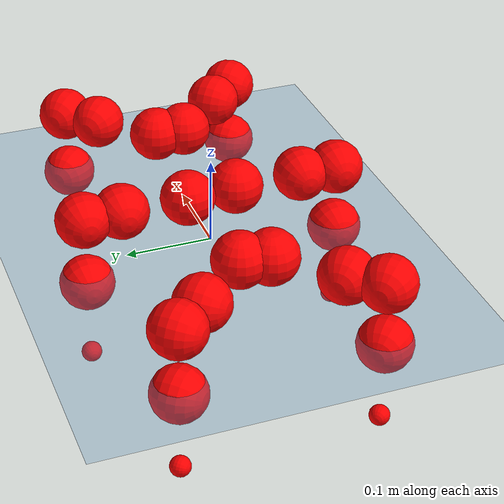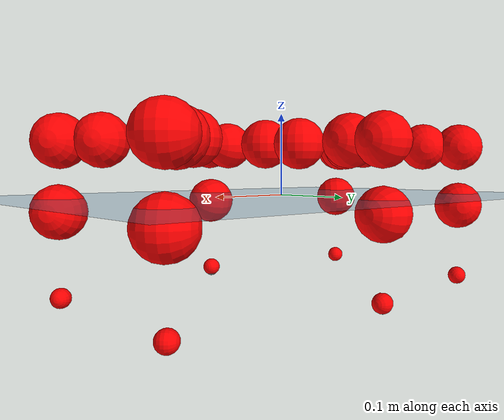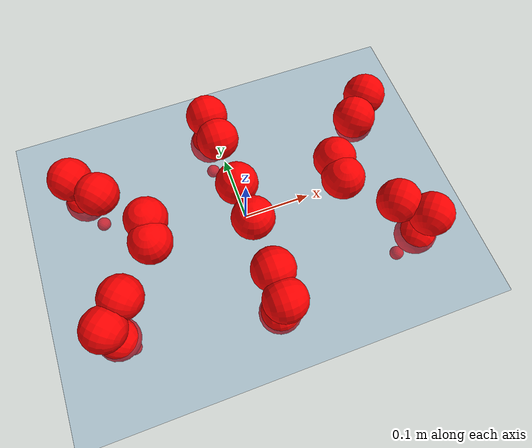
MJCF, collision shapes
<mujoco model="Golem">
  <compiler angle="radian" assetdir="assets" balanceinertia="true" inertiafromgeom="false"/>

  <option timestep="0.005" density="1.2" viscosity="2e-05"/>

  <size nkey="1"/>

  <visual>
    <quality shadowsize="8192"/>
    <map shadowclip="0.5"/>
  </visual>

  <default>
    <default class="/">
      <joint armature="0.01" damping="0.01" frictionloss="0.01"/>
      <geom contype="0" conaffinity="0" group="1" solref="-1000 -80"/>
      <site size="0.01 0.005 0.005" group="5"/>
      <general forcelimited="true" biastype="affine" gainprm="25" biasprm="0 -25 -0.5"/>
      <default class="visual">
        <geom type="mesh" group="2"/>
      </default>
      <default class="collision">
        <geom group="3"/>
      </default>
      <default class="foot">
        <geom size="0.01 0 0" condim="6" group="4" priority="1" solimp="0.015 1 0.01"/>
      </default>
      <default class="reward_collision_sphere">
        <geom group="5" rgba="1 0 0 1"/>
      </default>
    </default>
  </default>

  <asset>
    <texture type="skybox" colorspace="auto" name="//unnamed_texture_0" builtin="gradient" rgb1="0.95 0.95 0.95" rgb2="0.95 0.95 0.95" width="100" height="600"/>
    <texture type="2d" colorspace="auto" name="texplane" builtin="checker" rgb1="0.345 0.575 0.748" rgb2="0.345 0.575 0.748" markrgb="1 1 1" width="512" height="512"/>
    <material name="MatPlane" class="/" texture="texplane" texuniform="true" texrepeat="2 2" specular="0.9"/>
    <mesh name="body" class="/" file="body.stl" scale="0.001 0.001 0.001"/>
    <mesh name="coxa" class="/" file="coxa.stl" scale="0.001 0.001 0.001"/>
    <mesh name="femur" class="/" file="femur.stl" scale="0.001 0.001 0.001"/>
    <mesh name="tibia" class="/" file="tibia.stl" scale="0.001 0.001 0.001"/>
    <mesh name="tarsus" class="/" file="tarsus.stl" scale="0.001 0.001 0.001"/>
  </asset>

  <worldbody>
    <geom name="floor" class="/" size="100 100 0.125" type="plane" group="0" material="MatPlane"/>
    <light name="toplight_shadow" class="/" pos="0 0 5" dir="0.0990148 0.0990148 -0.990148" type="directional" ambient="0.04 0.04 0.04" diffuse="0.55 0.55 0.55" specular="0.12 0.12 0.12"/>
    <light name="toplight_fill" class="/" pos="0 0 5" dir="0.0990148 0.0990148 -0.990148" type="directional" castshadow="false" ambient="0.04 0.04 0.04" diffuse="0.3 0.3 0.3" specular="0.08 0.08 0.08"/>
    <body name="trunk" pos="0.000139037 -0.000179225 -0.000861537" quat="0.999999 -0.000539329 0.000602334 0.000893394">
      <inertial pos="-0.000771134 -0.000508398 -0.00337234" quat="1 0.000148863 -0.000213872 0.000451905" mass="1.78837" diaginertia="0.00592112 0.000129564 0.0103415"/>
      <joint name="//unnamed_joint_0" type="free"/>
      <geom name="//unnamed_geom_1" class="/" pos="0 0 0.0645236" quat="1 0 0 0" type="mesh" rgba="0.9 0.9 0.9 1" mesh="body"/>
      <site name="imu" class="/" pos="0.128502 -0.000567713 0.0991862" size="0.00776413"/>
      <camera name="track" class="/" pos="0 -0.839559 0" quat="0.707107 0.707107 0 0" mode="trackcom"/>
      <camera name="ego_camera" class="/" pos="0.117166 0 0.100818" quat="-0.5 -0.5 0.5 0.5"/>
      <body name="coxa_RR" pos="-0.161617 -0.0342719 0.0639957" quat="0.383045 -0.000384991 -0.00110297 -0.923729">
        <inertial pos="0.000139139 5.54426e-05 0.00193354" quat="0.999996 0.00276231 -0.000227783 -0.000259417" mass="0.0961059" diaginertia="0.00604059 0.000132484 0.0105798"/>
        <joint name="coxa_joint_RR" class="/" pos="0 0 0" axis="0.000669162 0.00604112 -0.999982" range="-3.16546 3.09612" armature="0.00771061" damping="0.00153464" frictionloss="0.0078368"/>
        <geom name="//unnamed_geom_2" class="/" type="mesh" rgba="0.2 0.2 0.2 1" mesh="coxa"/>
        <geom name="//unnamed_geom_3" class="reward_collision_sphere" size="0.0310565" pos="-0.0270383 0 0"/>
        <body name="femur_RR" pos="0.0552283 0.00222913 -0.00075988" quat="0.499953 -0.49974 0.500233 0.500074">
          <inertial pos="-0.00039922 -0.000258237 0.00089327" quat="0.999996 0.00217795 0.00151773 0.000621347" mass="0.0942161" diaginertia="0.00591537 0.000130134 0.010558"/>
          <joint name="femur_joint_RR" class="/" pos="0 0 0" axis="0.000229231 -0.000600599 -1" range="-3.09818 3.14361" armature="0.00704452" damping="0" frictionloss="0.00816264"/>
          <geom name="//unnamed_geom_4" class="/" type="mesh" rgba="0.9 0.9 0.9 1" mesh="femur"/>
          <geom name="//unnamed_geom_5" class="reward_collision_sphere" size="0.0310565"/>
          <body name="tibia_RR" pos="-0.00166633 -0.0439163 0.0020491" quat="4.52446e-05 1 -4.89087e-05 0.000426627">
            <inertial pos="0.00146176 0.000613406 0.000428284" quat="0.999996 0.0013834 -0.00094029 0.00207658" mass="0.0952588" diaginertia="0.00601578 0.000130094 0.0101836"/>
            <joint name="tibia_joint_RR" class="/" pos="0 0 0" axis="-0.00914859 0.00406197 0.99995" range="-3.09587 3.14484" armature="0.00721754" damping="0" frictionloss="0.00783495"/>
            <geom name="//unnamed_geom_6" class="/" type="mesh" rgba="0.2 0.2 0.2 1" mesh="tibia"/>
            <geom name="//unnamed_geom_7" class="reward_collision_sphere" size="0.0310565"/>
            <body name="tarsus_RR" pos="0.0770176 0.000784819 -0.00164391" quat="1 -0.000161594 0.000223972 0.000292346">
              <inertial pos="0.0547145 0.000825638 -0.000741927" quat="0.500127 0.499661 0.499952 0.50026" mass="0.0934715" diaginertia="0.0059149 0.000129998 0.0104454"/>
              <joint name="tarsus_joint_RR" class="/" pos="0 0 0" axis="-2.71883e-05 -0.00565642 0.999984" range="-3.12819 3.14011" armature="0.00820594" damping="0" frictionloss="0.00759276"/>
              <geom name="//unnamed_geom_8" class="/" type="mesh" rgba="0.9 0.9 0.9 1" mesh="tarsus"/>
              <geom name="foot_1" class="foot" size="0.00736248" pos="0.100943 0 0" quat="0 -0.707107 0 0.707107"/>
              <geom name="//unnamed_geom_10" class="reward_collision_sphere" size="0.0310565"/>
              <geom name="//unnamed_geom_11" class="reward_collision_sphere" size="0.0116462" pos="0.0968873 0 0"/>
              <site name="foot_1" class="foot" pos="0.100943 0 0" quat="0 -0.707107 0 0.707107" size="0.00776413"/>
            </body>
          </body>
        </body>
      </body>
      <body name="coxa_RM" pos="-0.000171992 -0.0563463 0.0650002" quat="0.706661 -0.000732493 0.000292874 -0.707552">
        <inertial pos="2.67101e-05 -0.00177212 0.000527465" quat="0.999996 0.00118233 0.000343404 0.00236626" mass="0.0925892" diaginertia="0.00585441 0.000131266 0.0105407"/>
        <joint name="coxa_joint_RM" class="/" pos="0 0 0" axis="-0.00464243 -0.00983102 -0.999941" range="-3.14115 3.16935" armature="0.00866213" damping="0.000271369" frictionloss="0.00740695"/>
        <geom name="//unnamed_geom_12" class="/" type="mesh" rgba="0.2 0.2 0.2 1" mesh="coxa"/>
        <geom name="//unnamed_geom_13" class="reward_collision_sphere" size="0.0310565" pos="-0.0270383 0 0"/>
        <body name="femur_RM" pos="0.0509256 9.86118e-06 0.000268115" quat="0.499942 -0.499923 0.500272 0.499862">
          <inertial pos="0.000431303 -0.0010308 0.000161034" quat="0.999991 0.00222836 0.000976075 -0.003482" mass="0.0941293" diaginertia="0.00585903 0.000133375 0.0106525"/>
          <joint name="femur_joint_RM" class="/" pos="0 0 0" axis="-0.000287857 0.00397587 -0.999992" range="-3.13208 3.13346" armature="0.00750876" damping="0.00374247" frictionloss="0.00803127"/>
          <geom name="//unnamed_geom_14" class="/" type="mesh" rgba="0.9 0.9 0.9 1" mesh="femur"/>
          <geom name="//unnamed_geom_15" class="reward_collision_sphere" size="0.0310565"/>
          <body name="tibia_RM" pos="-0.00045198 -0.0434901 2.05707e-05" quat="-1.56537e-05 1 -6.08526e-05 0.000144843">
            <inertial pos="-0.000750047 -0.00144083 -0.00186172" quat="0.999964 0.00198816 0.00481395 0.00677109" mass="0.0931075" diaginertia="0.00610316 0.000131317 0.010635"/>
            <joint name="tibia_joint_RM" class="/" pos="0 0 0" axis="0.00116866 0.000540368 0.999999" range="-3.14867 3.15261" armature="0.00848985" damping="0.000578184" frictionloss="0.00867439"/>
            <geom name="//unnamed_geom_16" class="/" type="mesh" rgba="0.2 0.2 0.2 1" mesh="tibia"/>
            <geom name="//unnamed_geom_17" class="reward_collision_sphere" size="0.0310565"/>
            <body name="tarsus_RM" pos="0.0776757 0.00051158 0.00209293" quat="1 -8.44075e-05 -0.000113421 6.75589e-05">
              <inertial pos="0.0548467 0.00146603 0.00015745" quat="0.500443 0.502803 0.498363 0.498377" mass="0.092848" diaginertia="0.00590915 0.000129013 0.0103316"/>
              <joint name="tarsus_joint_RM" class="/" pos="0 0 0" axis="0.000854413 8.89965e-05 1" range="-3.09547 3.13023" armature="0.00872239" damping="0" frictionloss="0.00794677"/>
              <geom name="//unnamed_geom_18" class="/" type="mesh" rgba="0.9 0.9 0.9 1" mesh="tarsus"/>
              <geom name="foot_2" class="foot" size="0.00841748" pos="0.100943 0 0" quat="0 -0.707107 0 0.707107"/>
              <geom name="//unnamed_geom_20" class="reward_collision_sphere" size="0.0310565"/>
              <geom name="//unnamed_geom_21" class="reward_collision_sphere" size="0.0116462" pos="0.0968873 0 0"/>
              <site name="foot_2" class="foot" pos="0.100943 0 0" quat="0 -0.707107 0 0.707107" size="0.00776413"/>
            </body>
          </body>
        </body>
      </body>
      <body name="coxa_RF" pos="0.159959 -0.0352462 0.0666177" quat="0.924116 0.000266312 -0.000198183 -0.382112">
        <inertial pos="-0.00077755 -0.00264818 0.000853857" quat="0.999989 -0.00230163 0.00300814 -0.00262224" mass="0.0947832" diaginertia="0.00601003 0.000129343 0.0104162"/>
        <joint name="coxa_joint_RF" class="/" pos="0 0 0" axis="-0.00237055 0.00274039 -0.999993" range="-3.12393 3.18014" armature="0.00765207" damping="0" frictionloss="0.00770119"/>
        <geom name="//unnamed_geom_22" class="/" type="mesh" rgba="0.2 0.2 0.2 1" mesh="coxa"/>
        <geom name="//unnamed_geom_23" class="reward_collision_sphere" size="0.0310565" pos="-0.0270383 0 0"/>
        <body name="femur_RF" pos="0.0563036 0.000575264 -0.00163357" quat="0.500309 -0.500426 0.499167 0.500097">
          <inertial pos="0.000584624 -0.0013747 0.00214071" quat="0.99994 -0.00346637 0.00860228 0.00583072" mass="0.0950421" diaginertia="0.00594261 0.000127268 0.0105497"/>
          <joint name="femur_joint_RF" class="/" pos="0 0 0" axis="0.00393289 -0.00208444 -0.99999" range="-3.12346 3.13804" armature="0.00770198" damping="0" frictionloss="0.00697927"/>
          <geom name="//unnamed_geom_24" class="/" type="mesh" rgba="0.9 0.9 0.9 1" mesh="femur"/>
          <geom name="//unnamed_geom_25" class="reward_collision_sphere" size="0.0310565"/>
          <body name="tibia_RF" pos="0.00088385 -0.047232 0.000318739" quat="4.28983e-05 1 0.000377532 0.000482394">
            <inertial pos="-0.000133978 0.000319879 0.0009026" quat="0.999994 -0.00178149 0.00180296 -0.00233213" mass="0.0938262" diaginertia="0.00596558 0.000132132 0.010633"/>
            <joint name="tibia_joint_RF" class="/" pos="0 0 0" axis="0.00618769 -0.00442162 0.999971" range="-3.12346 3.1436" armature="0.0081088" damping="0.00625449" frictionloss="0.00777728"/>
            <geom name="//unnamed_geom_26" class="/" type="mesh" rgba="0.2 0.2 0.2 1" mesh="tibia"/>
            <geom name="//unnamed_geom_27" class="reward_collision_sphere" size="0.0310565"/>
            <body name="tarsus_RF" pos="0.0789341 0.00221208 -0.000283339" quat="0.999999 -0.00070157 -0.00078508 -2.97075e-05">
              <inertial pos="0.0518837 -0.000427645 0.00237054" quat="0.502768 0.499075 0.502133 0.495994" mass="0.0911131" diaginertia="0.00593635 0.000127031 0.0102042"/>
              <joint name="tarsus_joint_RF" class="/" pos="0 0 0" axis="-0.0111929 0.00737029 0.99991" range="-3.09534 3.11904" armature="0.00771904" damping="0" frictionloss="0.00802514"/>
              <geom name="//unnamed_geom_28" class="/" type="mesh" rgba="0.9 0.9 0.9 1" mesh="tarsus"/>
              <geom name="foot_3" class="foot" size="0.00762139" pos="0.100943 0 0" quat="0 -0.707107 0 0.707107"/>
              <geom name="//unnamed_geom_30" class="reward_collision_sphere" size="0.0310565"/>
              <geom name="//unnamed_geom_31" class="reward_collision_sphere" size="0.0116462" pos="0.0968873 0 0"/>
              <site name="foot_3" class="foot" pos="0.100943 0 0" quat="0 -0.707107 0 0.707107" size="0.00776413"/>
            </body>
          </body>
        </body>
      </body>
      <body name="coxa_LR" pos="-0.15844 0.0376252 0.0660732" quat="0.381786 -0.00040353 8.76654e-05 0.924251">
        <inertial pos="0.00231773 0.000125678 0.000742395" quat="0.99998 -0.0060217 0.00166466 -5.09717e-05" mass="0.0922303" diaginertia="0.00591039 0.000128809 0.0102916"/>
        <joint name="coxa_joint_LR" class="/" pos="0 0 0" axis="0.00738208 0.00511254 -0.99996" range="-3.12538 3.14836" armature="0.00807349" damping="0.0091285" frictionloss="0.00784373"/>
        <geom name="//unnamed_geom_32" class="/" type="mesh" rgba="0.2 0.2 0.2 1" mesh="coxa"/>
        <geom name="//unnamed_geom_33" class="reward_collision_sphere" size="0.0310565" pos="-0.0270383 0 0"/>
        <body name="femur_LR" pos="0.0544116 -0.00418245 -0.00229341" quat="0.500271 -0.500123 0.500556 0.499048">
          <inertial pos="-0.00127239 -0.000245197 0.000752888" quat="1 0.000497128 0.000395775 -0.000596423" mass="0.0932217" diaginertia="0.00591519 0.000129216 0.010285"/>
          <joint name="femur_joint_LR" class="/" pos="0 0 0" axis="-0.00108523 -0.00013553 0.999999" range="-3.1475 3.18745" armature="0.00759887" damping="0.00325836" frictionloss="0.0086773"/>
          <geom name="//unnamed_geom_34" class="/" type="mesh" rgba="0.9 0.9 0.9 1" mesh="femur"/>
          <geom name="//unnamed_geom_35" class="reward_collision_sphere" size="0.0310565"/>
          <body name="tibia_LR" pos="0.0007184 -0.0477568 -0.00319387" quat="-3.66683e-05 1 -4.01273e-05 -3.03148e-05">
            <inertial pos="-0.000997592 -0.000764108 0.000918996" quat="0.999989 0.00218066 0.00376099 -0.00201811" mass="0.0943727" diaginertia="0.00598821 0.000132561 0.0104707"/>
            <joint name="tibia_joint_LR" class="/" pos="0 0 0" axis="-0.000750515 -0.00022429 -1" range="-3.15914 3.10171" armature="0.00693071" damping="0" frictionloss="0.00785235"/>
            <geom name="//unnamed_geom_36" class="/" type="mesh" rgba="0.2 0.2 0.2 1" mesh="tibia"/>
            <geom name="//unnamed_geom_37" class="reward_collision_sphere" size="0.0310565"/>
            <body name="tarsus_LR" pos="0.079667 0.000577141 -0.000275195" quat="1 -0.000447174 0.000335138 5.15755e-05">
              <inertial pos="0.0555538 0.000597626 0.000617571" quat="0.499276 0.50035 0.501084 0.499288" mass="0.0927314" diaginertia="0.00590297 0.000130681 0.0103295"/>
              <joint name="tarsus_joint_LR" class="/" pos="0 0 0" axis="0.00166976 0.000402934 -0.999999" range="-3.09706 3.13446" armature="0.00780226" damping="0" frictionloss="0.00774647"/>
              <geom name="//unnamed_geom_38" class="/" type="mesh" rgba="0.9 0.9 0.9 1" mesh="tarsus"/>
              <geom name="foot_4" class="foot" size="0.00722762" pos="0.100943 0 0" quat="0.707107 0 -0.707107 0"/>
              <geom name="//unnamed_geom_40" class="reward_collision_sphere" size="0.0310565"/>
              <geom name="//unnamed_geom_41" class="reward_collision_sphere" size="0.0116462" pos="0.0968873 0 0"/>
              <site name="foot_4" class="foot" pos="0.100943 0 0" quat="0.707107 0 -0.707107 0" size="0.00776413"/>
            </body>
          </body>
        </body>
      </body>
      <body name="coxa_LM" pos="-0.00369837 0.055538 0.0637693" quat="0.706694 -0.000495235 0.00121094 0.707518">
        <inertial pos="0.00111152 0.00010815 0.00123505" quat="0.999999 -0.00139608 0.000310886 -0.000906305" mass="0.0976576" diaginertia="0.00630651 0.000134133 0.0106486"/>
        <joint name="coxa_joint_LM" class="/" pos="0 0 0" axis="0.00250097 0.000981226 -0.999996" stiffness="0.00481008" range="-3.16847 3.14959" armature="0.00747449" damping="0.0084849" frictionloss="0.00827759"/>
        <geom name="//unnamed_geom_42" class="/" type="mesh" rgba="0.2 0.2 0.2 1" mesh="coxa"/>
        <geom name="//unnamed_geom_43" class="reward_collision_sphere" size="0.0310565" pos="-0.0270383 0 0"/>
        <body name="femur_LM" pos="0.0500041 0.00299722 0.000975776" quat="0.499875 -0.500165 0.499899 0.500061">
          <inertial pos="0.000205682 -0.00084496 0.000265915" quat="1 -0.000760897 0.000377098 -6.31646e-05" mass="0.0898379" diaginertia="0.00585058 0.000126861 0.010162"/>
          <joint name="femur_joint_LM" class="/" pos="0 0 0" axis="0.000823439 0.00181877 0.999998" range="-3.15667 3.12937" armature="0.00786217" damping="0" frictionloss="0.00792585"/>
          <geom name="//unnamed_geom_44" class="/" type="mesh" rgba="0.9 0.9 0.9 1" mesh="femur"/>
          <geom name="//unnamed_geom_45" class="reward_collision_sphere" size="0.0310565"/>
          <body name="tibia_LM" pos="0.000160239 -0.0438846 0.00241111" quat="-3.78356e-05 1 2.30897e-05 9.89464e-06">
            <inertial pos="-0.00222665 0.000736171 8.95343e-05" quat="1 -1.76719e-05 -2.942e-05 -0.000132269" mass="0.0944636" diaginertia="0.00579277 0.000129471 0.0104015"/>
            <joint name="tibia_joint_LM" class="/" pos="0 0 0" axis="-0.00284253 0.00133386 -0.999995" range="-3.11924 3.13641" armature="0.00788784" damping="0.00419006" frictionloss="0.00777397"/>
            <geom name="//unnamed_geom_46" class="/" type="mesh" rgba="0.2 0.2 0.2 1" mesh="tibia"/>
            <geom name="//unnamed_geom_47" class="reward_collision_sphere" size="0.0310565"/>
            <body name="tarsus_LM" pos="0.0801677 0.000200307 -0.00185566" quat="1 -7.29664e-05 -0.000333987 -0.000114656">
              <inertial pos="0.0542979 0.000673903 -0.000147572" quat="0.498704 0.500937 0.500413 0.499943" mass="0.0928615" diaginertia="0.00596268 0.000129893 0.0105748"/>
              <joint name="tarsus_joint_LM" class="/" pos="0 0 0" axis="0.000409784 -0.00456498 -0.999989" stiffness="0.000430621" range="-3.15716 3.11963" armature="0.00773091" damping="0.00922349" frictionloss="0.00719761"/>
              <geom name="//unnamed_geom_48" class="/" type="mesh" rgba="0.9 0.9 0.9 1" mesh="tarsus"/>
              <geom name="foot_5" class="foot" size="0.00772535" pos="0.100943 0 0" quat="0.707107 0 -0.707107 0"/>
              <geom name="//unnamed_geom_50" class="reward_collision_sphere" size="0.0310565"/>
              <geom name="//unnamed_geom_51" class="reward_collision_sphere" size="0.0116462" pos="0.0968873 0 0"/>
              <site name="foot_5" class="foot" pos="0.100943 0 0" quat="0.707107 0 -0.707107 0" size="0.00776413"/>
            </body>
          </body>
        </body>
      </body>
      <body name="coxa_LF" pos="0.162005 0.0367763 0.0651894" quat="0.923884 1.69082e-05 9.07509e-06 0.382673">
        <inertial pos="-0.000255469 -0.000750323 -0.000143996" quat="0.99999 0.00013528 -0.000155221 0.00435824" mass="0.0922021" diaginertia="0.00585925 0.000125657 0.010237"/>
        <joint name="coxa_joint_LF" class="/" pos="0 0 0" axis="-0.00387725 0.00483435 -0.999981" range="-3.15332 3.15734" armature="0.00770425" damping="0" frictionloss="0.00765695"/>
        <geom name="//unnamed_geom_52" class="/" type="mesh" rgba="0.2 0.2 0.2 1" mesh="coxa"/>
        <geom name="//unnamed_geom_53" class="reward_collision_sphere" size="0.0310565" pos="-0.0270383 0 0"/>
        <body name="femur_LF" pos="0.0522685 -0.000648193 -0.00238419" quat="0.500009 -0.500019 0.499919 0.500052">
          <inertial pos="-0.00022347 0.000702686 -0.000104064" quat="0.999929 -0.00385095 -0.00341893 -0.0107243" mass="0.0939022" diaginertia="0.00604805 0.000127564 0.0104275"/>
          <joint name="femur_joint_LF" class="/" pos="0 0 0" axis="-0.00472105 -0.00159914 0.999988" stiffness="0.000152102" range="-3.13006 3.15015" armature="0.00755823" damping="0" frictionloss="0.00682078"/>
          <geom name="//unnamed_geom_54" class="/" type="mesh" rgba="0.9 0.9 0.9 1" mesh="femur"/>
          <geom name="//unnamed_geom_55" class="reward_collision_sphere" size="0.0310565"/>
          <body name="tibia_LF" pos="-0.000254252 -0.0451254 0.000244963" quat="0.00010585 1 0.000130044 0.000250839">
            <inertial pos="-0.000305407 -0.000592696 0.000478698" quat="0.999998 0.00128687 0.000101705 0.00124543" mass="0.0943033" diaginertia="0.00603197 0.000131062 0.0104559"/>
            <joint name="tibia_joint_LF" class="/" pos="0 0 0" axis="0.00414954 -0.00214103 -0.999989" range="-3.18609 3.1487" armature="0.00765757" damping="0.00258613" frictionloss="0.00752782"/>
            <geom name="//unnamed_geom_56" class="/" type="mesh" rgba="0.2 0.2 0.2 1" mesh="tibia"/>
            <geom name="//unnamed_geom_57" class="reward_collision_sphere" size="0.0310565"/>
            <body name="tarsus_LF" pos="0.0799474 -0.00036755 0.000455218" quat="1 3.26804e-06 6.12023e-05 8.6234e-06">
              <inertial pos="0.0558786 0.000615578 0.00255437" quat="0.500341 0.500097 0.499925 0.499636" mass="0.095258" diaginertia="0.00593639 0.000131845 0.0105818"/>
              <joint name="tarsus_joint_LF" class="/" pos="0 0 0" axis="0.0029559 0.00716268 -0.99997" stiffness="0.0290875" range="-3.13754 3.1382" armature="0.00780293" damping="0.0272928" frictionloss="0.00780813"/>
              <geom name="//unnamed_geom_58" class="/" type="mesh" rgba="0.9 0.9 0.9 1" mesh="tarsus"/>
              <geom name="foot_6" class="foot" size="0.00786474" pos="0.100943 0 0" quat="0.707107 0 -0.707107 0"/>
              <geom name="//unnamed_geom_60" class="reward_collision_sphere" size="0.0310565"/>
              <geom name="//unnamed_geom_61" class="reward_collision_sphere" size="0.0116462" pos="0.0968873 0 0"/>
              <site name="foot_6" class="foot" pos="0.100943 0 0" quat="0.707107 0 -0.707107 0" size="0.00776413"/>
            </body>
          </body>
        </body>
      </body>
    </body>
  </worldbody>

  <contact>
    <pair class="/" geom1="floor" geom2="foot_1" name="//unnamed_contact_0"/>
    <pair class="/" geom1="floor" geom2="foot_2" name="//unnamed_contact_1"/>
    <pair class="/" geom1="floor" geom2="foot_3" name="//unnamed_contact_2"/>
    <pair class="/" geom1="floor" geom2="foot_4" name="//unnamed_contact_3"/>
    <pair class="/" geom1="floor" geom2="foot_5" name="//unnamed_contact_4"/>
    <pair class="/" geom1="floor" geom2="foot_6" name="//unnamed_contact_5"/>
  </contact>

  <actuator>
    <general name="coxa_joint_RR" class="/" joint="coxa_joint_RR" forcerange="-5.86792 5.86792" gainprm="17.6996" biasprm="0 -17.6996 -0.381179"/>
    <general name="femur_joint_RR" class="/" joint="femur_joint_RR" forcerange="-5.51352 5.51352" gainprm="17.6996" biasprm="0 -17.6996 -0.381179"/>
    <general name="tibia_joint_RR" class="/" joint="tibia_joint_RR" forcerange="-5.85341 5.85341" gainprm="17.6996" biasprm="0 -17.6996 -0.381179"/>
    <general name="tarsus_joint_RR" class="/" joint="tarsus_joint_RR" forcerange="-5.56248 5.56248" gainprm="17.6996" biasprm="0 -17.6996 -0.381179"/>
    <general name="coxa_joint_RM" class="/" joint="coxa_joint_RM" forcerange="-5.88362 5.88362" gainprm="17.6996" biasprm="0 -17.6996 -0.381179"/>
    <general name="femur_joint_RM" class="/" joint="femur_joint_RM" forcerange="-6.00351 6.00351" gainprm="17.6996" biasprm="0 -17.6996 -0.381179"/>
    <general name="tibia_joint_RM" class="/" joint="tibia_joint_RM" forcerange="-5.80761 5.80761" gainprm="17.6996" biasprm="0 -17.6996 -0.381179"/>
    <general name="tarsus_joint_RM" class="/" joint="tarsus_joint_RM" forcerange="-6.16489 6.16489" gainprm="17.6996" biasprm="0 -17.6996 -0.381179"/>
    <general name="coxa_joint_RF" class="/" joint="coxa_joint_RF" forcerange="-6.09185 6.09185" gainprm="17.6996" biasprm="0 -17.6996 -0.381179"/>
    <general name="femur_joint_RF" class="/" joint="femur_joint_RF" forcerange="-5.24142 5.24142" gainprm="17.6996" biasprm="0 -17.6996 -0.381179"/>
    <general name="tibia_joint_RF" class="/" joint="tibia_joint_RF" forcerange="-5.83964 5.83964" gainprm="17.6996" biasprm="0 -17.6996 -0.381179"/>
    <general name="tarsus_joint_RF" class="/" joint="tarsus_joint_RF" forcerange="-5.77611 5.77611" gainprm="17.6996" biasprm="0 -17.6996 -0.381179"/>
    <general name="coxa_joint_LR" class="/" joint="coxa_joint_LR" forcerange="-5.58146 5.58146" gainprm="17.6996" biasprm="0 -17.6996 -0.381179"/>
    <general name="femur_joint_LR" class="/" joint="femur_joint_LR" forcerange="-5.51128 5.51128" gainprm="17.6996" biasprm="0 -17.6996 -0.381179"/>
    <general name="tibia_joint_LR" class="/" joint="tibia_joint_LR" forcerange="-5.82473 5.82473" gainprm="17.6996" biasprm="0 -17.6996 -0.381179"/>
    <general name="tarsus_joint_LR" class="/" joint="tarsus_joint_LR" forcerange="-5.63548 5.63548" gainprm="17.6996" biasprm="0 -17.6996 -0.381179"/>
    <general name="coxa_joint_LM" class="/" joint="coxa_joint_LM" forcerange="-5.64664 5.64664" gainprm="17.6996" biasprm="0 -17.6996 -0.381179"/>
    <general name="femur_joint_LM" class="/" joint="femur_joint_LM" forcerange="-5.6648 5.6648" gainprm="17.6996" biasprm="0 -17.6996 -0.381179"/>
    <general name="tibia_joint_LM" class="/" joint="tibia_joint_LM" forcerange="-5.17622 5.17622" gainprm="17.6996" biasprm="0 -17.6996 -0.381179"/>
    <general name="tarsus_joint_LM" class="/" joint="tarsus_joint_LM" forcerange="-5.68758 5.68758" gainprm="17.6996" biasprm="0 -17.6996 -0.381179"/>
    <general name="coxa_joint_LF" class="/" joint="coxa_joint_LF" forcerange="-6.0115 6.0115" gainprm="17.6996" biasprm="0 -17.6996 -0.381179"/>
    <general name="femur_joint_LF" class="/" joint="femur_joint_LF" forcerange="-6.04028 6.04028" gainprm="17.6996" biasprm="0 -17.6996 -0.381179"/>
    <general name="tibia_joint_LF" class="/" joint="tibia_joint_LF" forcerange="-5.71845 5.71845" gainprm="17.6996" biasprm="0 -17.6996 -0.381179"/>
    <general name="tarsus_joint_LF" class="/" joint="tarsus_joint_LF" forcerange="-5.87709 5.87709" gainprm="17.6996" biasprm="0 -17.6996 -0.381179"/>
  </actuator>

  <sensor>
    <gyro site="imu" name="imu_angular_velocity"/>
    <velocimeter site="imu" name="imu_linear_velocity"/>
    <framelinvel objtype="site" objname="foot_1" name="foot_1_global_linear_velocity"/>
    <framelinvel objtype="site" objname="foot_2" name="foot_2_global_linear_velocity"/>
    <framelinvel objtype="site" objname="foot_3" name="foot_3_global_linear_velocity"/>
    <framelinvel objtype="site" objname="foot_4" name="foot_4_global_linear_velocity"/>
    <framelinvel objtype="site" objname="foot_5" name="foot_5_global_linear_velocity"/>
    <framelinvel objtype="site" objname="foot_6" name="foot_6_global_linear_velocity"/>
  </sensor>

  <keyframe>
    <key name="home" qpos="0 0 0.1457 1 0 0 0 0 0 0 0 0 0 0 0 0 0 0 0 0 0 0 0 0 0 0 0 0 0 0 0"/>
  </keyframe>
</mujoco>
